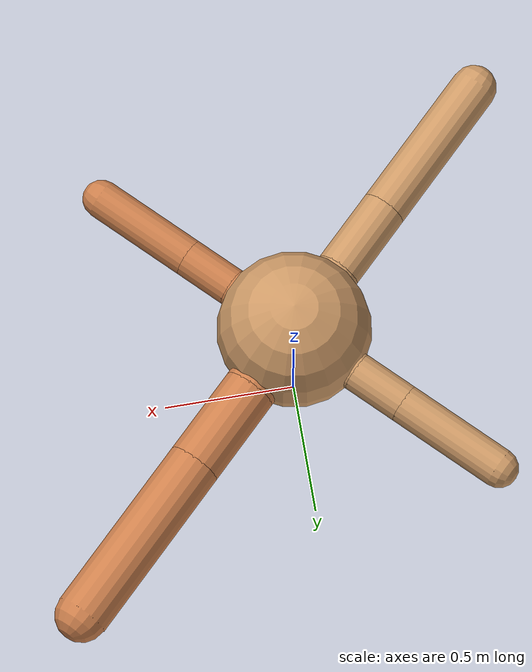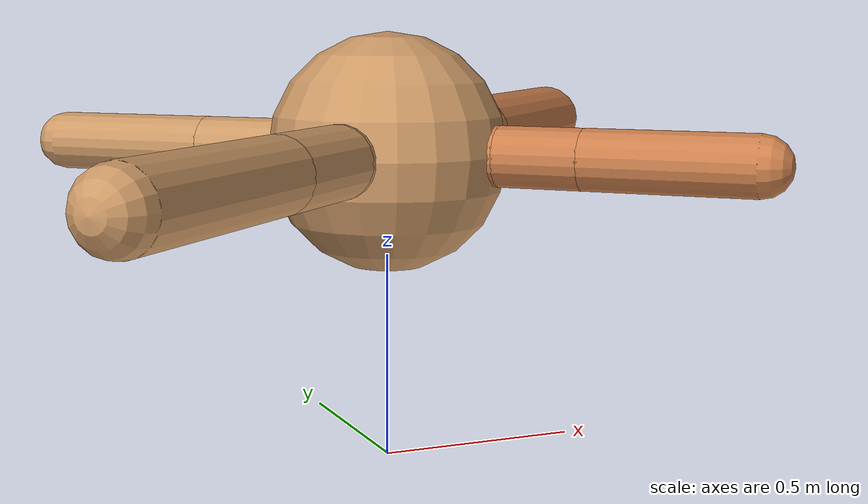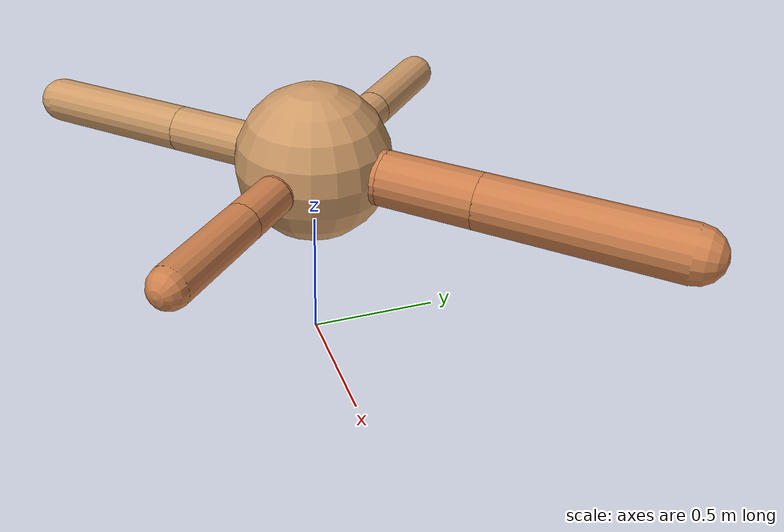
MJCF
<?xml version="1.0" ?>
<mujoco model="ant">

	<compiler angle="degree" coordinate="local" inertiafromgeom="true"/>

	<option integrator="RK4" timestep="0.01"/>

	<custom>

		<numeric data="0.0 0.0 0.55 1.0 0.0 0.0 0.0 0.0 1.0 0.0 -1.0 0.0 -1.0 0.0 1.0" name="init_qpos"/>

	</custom>

	<default>

		<joint armature="1" damping="1" limited="true"/>

		<geom conaffinity="0" condim="3" density="5.0" friction="1.5 0.1 0.1" margin="0.01" rgba="0.8 0.6 0.4 1"/>

	</default>

	<worldbody>

		<body name="torso" pos="0 0 0.75">

			<geom name="torso_geom" pos="0 0 0" size="0.2890075232371072" type="sphere"/>

			<!--joint armature="0" damping="0" limited="false" margin="0.01" name="root" pos="0 0 0" type="free"/-->

			<body name="front_left_leg" pos="0 0 0">

				<geom fromto="0 0 0 0.2 0.2 0" name="aux_1_geom" size="0.10068673937044371" type="capsule" rgba=".8 .5 .3 1"/>

				<body name="aux_1" pos="0.2 0.2 0">

					<joint axis="0 0 1" name="hip_1" pos="0.0 0.0 0.0" range="-40 40" type="hinge"/>

					<geom fromto="0 0 0 0.24742613790537304 0.24742613790537304 0" name="left_leg_geom" size="0.10068673937044371" type="capsule" rgba=".8 .5 .3 1"/>

					<body pos="0.24742613790537304 0.24742613790537304 0" name="front_left_foot">

						<joint axis="-1 1 0" name="ankle_1" pos="0.0 0.0 0.0" range="30 100" type="hinge"/>

						<geom fromto="0 0 0 0.4948522758107461 0.4948522758107461 0" name="left_ankle_geom" size="0.10068673937044371" type="capsule" rgba=".8 .5 .3 1"/>

					</body>

				</body>

			</body>

			<body name="front_right_leg" pos="0 0 0">

				<geom fromto="0 0 0 -0.2 0.2 0" name="aux_2_geom" size="0.07386090712078619" type="capsule"/>

				<body name="aux_2" pos="-0.2 0.2 0">

					<joint axis="0 0 1" name="hip_2" pos="0.0 0.0 0.0" range="-40 40" type="hinge"/>

					<geom fromto="0 0 0 -0.14996110827642373 0.14996110827642373 0" name="right_leg_geom" size="0.07386090712078619" type="capsule"/>

					<body pos="-0.14996110827642373 0.14996110827642373 0" name="front_right_foot">

						<joint axis="1 1 0" name="ankle_2" pos="0.0 0.0 0.0" range="-100 -30" type="hinge"/>

						<geom fromto="0 0 0 -0.29992221655284745 0.29992221655284745 0" name="right_ankle_geom" size="0.07386090712078619" type="capsule"/>

					</body>

				</body>

			</body>

			<body name="left_back_leg" pos="0 0 0">

				<geom fromto="0 0 0 -0.2 -0.2 0" name="aux_3_geom" size="0.08598770098164389" type="capsule"/>

				<body name="aux_3" pos="-0.2 -0.2 0">

					<joint axis="0 0 1" name="hip_3" pos="0.0 0.0 0.0" range="-40 40" type="hinge"/>

					<geom fromto="0 0 0 -0.20875021809526345 -0.20875021809526345 0" name="back_leg_geom" size="0.08598770098164389" type="capsule"/>

					<body pos="-0.20875021809526345 -0.20875021809526345 0" name="left_back_foot">

						<joint axis="-1 1 0" name="ankle_3" pos="0.0 0.0 0.0" range="-100 -30" type="hinge"/>

						<geom fromto="0 0 0 -0.4175004361905269 -0.4175004361905269 0" name="third_ankle_geom" size="0.08598770098164389" type="capsule"/>

					</body>

				</body>

			</body>

			<body name="right_back_leg" pos="0 0 0">

				<geom fromto="0 0 0 0.2 -0.2 0" name="aux_4_geom" size="0.07229819447450861" type="capsule" rgba=".8 .5 .3 1"/>

				<body name="aux_4" pos="0.2 -0.2 0">

					<joint axis="0 0 1" name="hip_4" pos="0.0 0.0 0.0" range="-40 40" type="hinge"/>

					<geom fromto="0 0 0 0.14087481186115125 -0.14087481186115125 0" name="rightback_leg_geom" size="0.07229819447450861" type="capsule" rgba=".8 .5 .3 1"/>

					<body pos="0.14087481186115125 -0.14087481186115125 0" name="right_back_foot">

						<joint axis="1 1 0" name="ankle_4" pos="0.0 0.0 0.0" range="30 100" type="hinge"/>

						<geom fromto="0 0 0 0.2817496237223025 -0.2817496237223025 0" name="fourth_ankle_geom" size="0.07229819447450861" type="capsule" rgba=".8 .5 .3 1"/>

					</body>

				</body>

			</body>

		</body>

	</worldbody>

	<actuator>

		<motor ctrllimited="true" ctrlrange="-1.0 1.0" joint="hip_4" gear="150"/>

		<motor ctrllimited="true" ctrlrange="-1.0 1.0" joint="ankle_4" gear="150"/>

		<motor ctrllimited="true" ctrlrange="-1.0 1.0" joint="hip_1" gear="150"/>

		<motor ctrllimited="true" ctrlrange="-1.0 1.0" joint="ankle_1" gear="150"/>

		<motor ctrllimited="true" ctrlrange="-1.0 1.0" joint="hip_2" gear="150"/>

		<motor ctrllimited="true" ctrlrange="-1.0 1.0" joint="ankle_2" gear="150"/>

		<motor ctrllimited="true" ctrlrange="-1.0 1.0" joint="hip_3" gear="150"/>

		<motor ctrllimited="true" ctrlrange="-1.0 1.0" joint="ankle_3" gear="150"/>

	</actuator>

</mujoco>
